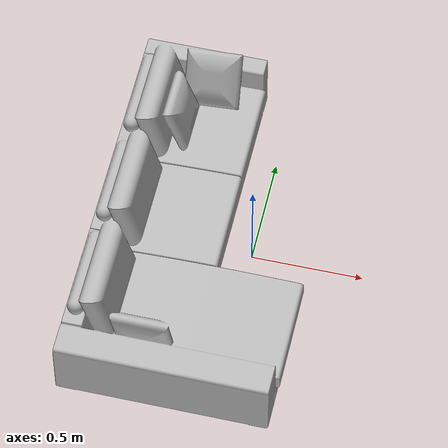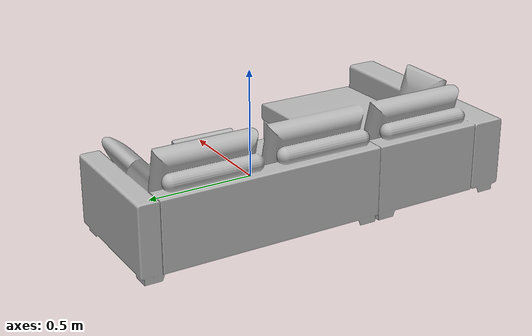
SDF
<?xml version="1.0" ?>
<sdf version="1.6">
  <model name="sofa">
    <static>true</static>
    <link name="link">
      <visual name="visual">
        <pose>-0.4 0 0.23 1.570796 0 -1.570796</pose>
        <geometry>
          <mesh>
            <scale>2 2 2</scale>
            <uri>model://sofa/models/model_normalized.obj</uri>
          </mesh>
        </geometry>
      </visual>
    </link>
  </model>
</sdf>
